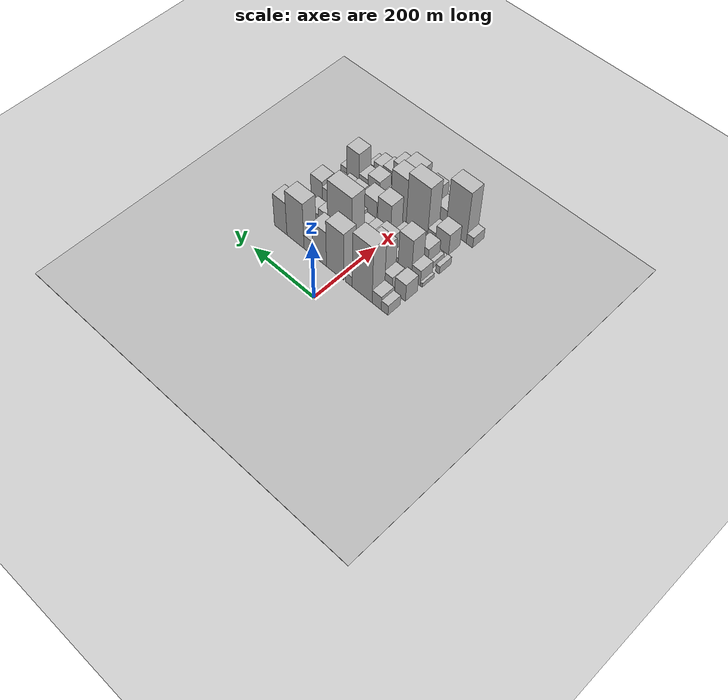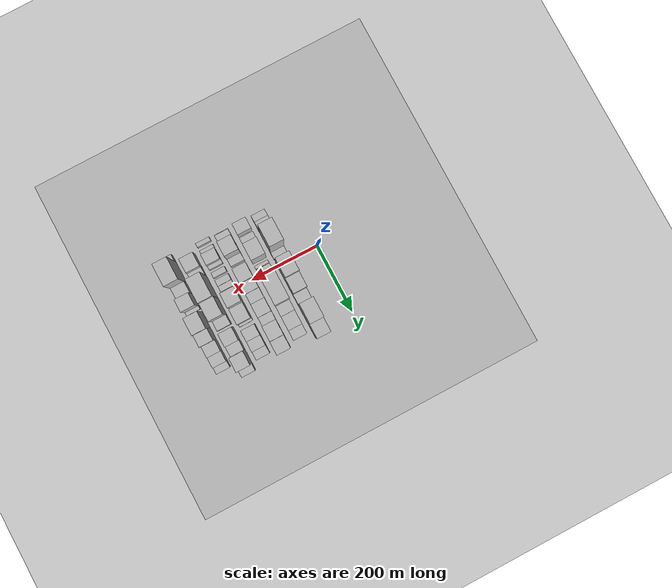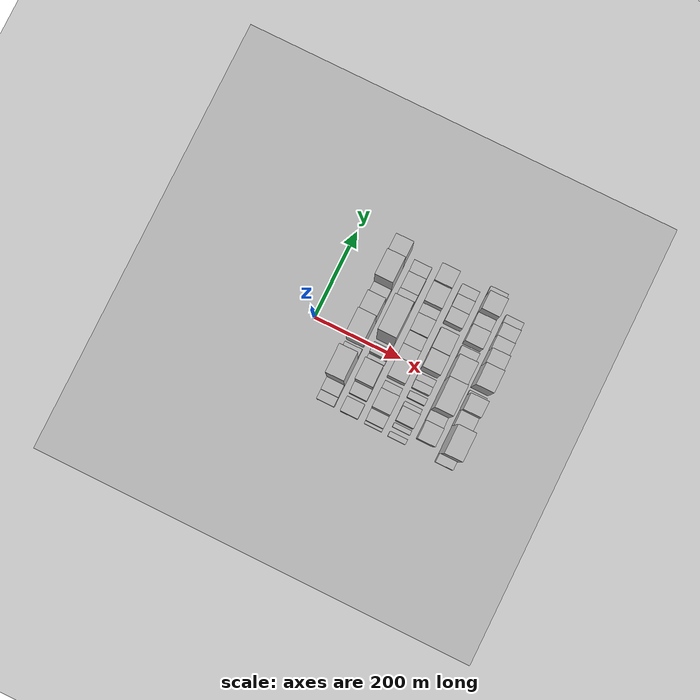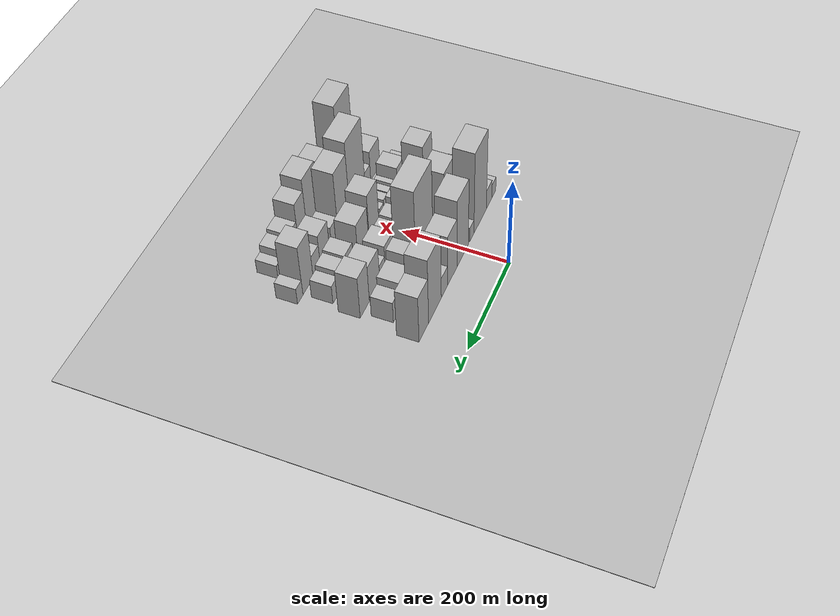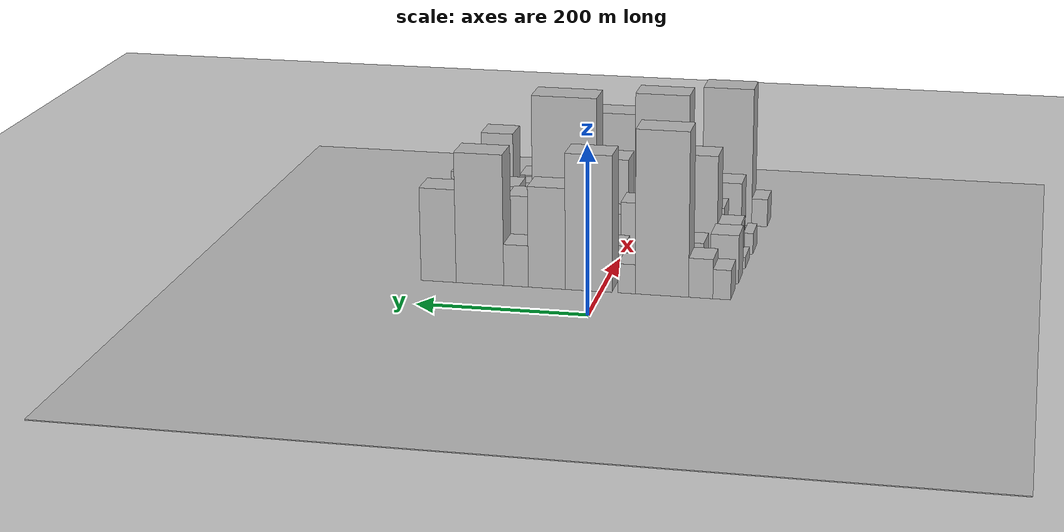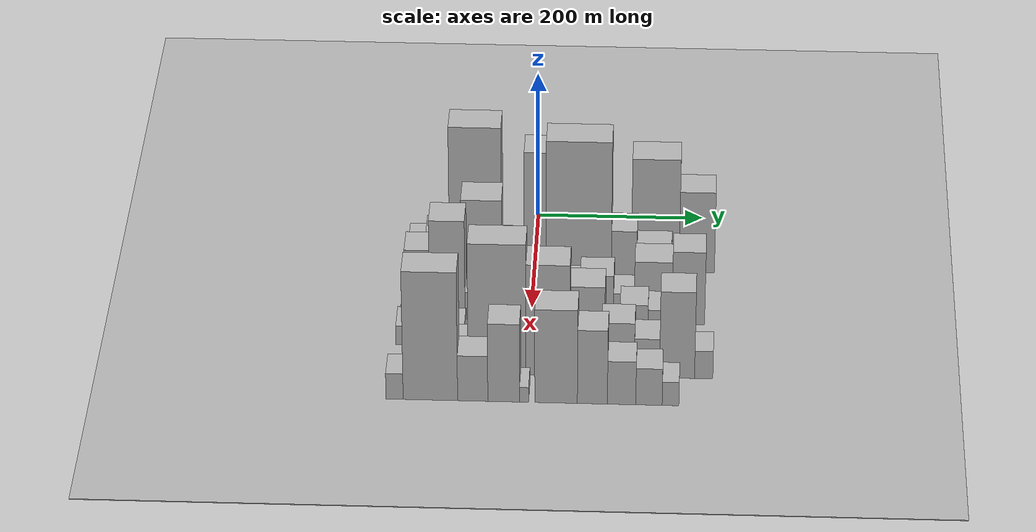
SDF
<sdf version="1.6">
 <world name="default">
  <include><name>ground_plane_1</name><uri>model://HANNAS_ground_plane</uri></include>
  <include>
   <name>ground_plane_2</name>
   <uri>model://HANNAS_ground_plane</uri>
   <pose>100 0 0  0 0 0</pose>
  </include>
  <model name="building_18">
   <static>1</static>
   <pose>100.0000 -140.6961 0 0.000000 0.000000 0.000000</pose>
   <link name="link">
    <pose>0 0 18.00 0 0 0</pose>
    <collision name="collision"><geometry><box><size>40.0000 20.7948 36.0000</size></box></geometry></collision>
    <visual name="visual">
     <cast_shadows>0</cast_shadows>
     <geometry><box><size>40.0000 20.7948 36.0000</size></box></geometry>
     <material>
      <script>
       <uri>model://HANNAS_wall/materials/scripts</uri>
       <uri>model://HANNAS_wall/materials/textures</uri>
       <name>vrc/HANNAS_wall</name>
      </script>
     </material>
    </visual>
   </link>
  </model>
  <model name="building_19">
   <static>1</static>
   <pose>100.0000 -116.2024 0 0.000000 0.000000 0.000000</pose>
   <link name="link">
    <pose>0 0 24.00 0 0 0</pose>
    <collision name="collision"><geometry><box><size>40.0000 28.1926 48.0000</size></box></geometry></collision>
    <visual name="visual">
     <cast_shadows>0</cast_shadows>
     <geometry><box><size>40.0000 28.1926 48.0000</size></box></geometry>
     <material>
      <script>
       <uri>model://HANNAS_wall/materials/scripts</uri>
       <uri>model://HANNAS_wall/materials/textures</uri>
       <name>vrc/HANNAS_wall</name>
      </script>
     </material>
    </visual>
   </link>
  </model>
  <model name="building_20">
   <static>1</static>
   <pose>100.0000 -70.9713 0 0.000000 0.000000 0.000000</pose>
   <link name="link">
    <pose>0 0 99.00 0 0 0</pose>
    <collision name="collision"><geometry><box><size>40.0000 62.2696 198.0000</size></box></geometry></collision>
    <visual name="visual">
     <cast_shadows>0</cast_shadows>
     <geometry><box><size>40.0000 62.2696 198.0000</size></box></geometry>
     <material>
      <script>
       <uri>model://HANNAS_wall/materials/scripts</uri>
       <uri>model://HANNAS_wall/materials/textures</uri>
       <name>vrc/HANNAS_wall</name>
      </script>
     </material>
    </visual>
   </link>
  </model>
  <model name="building_21">
   <static>1</static>
   <pose>100.0000 -29.6913 0 0.000000 0.000000 0.000000</pose>
   <link name="link">
    <pose>0 0 18.00 0 0 0</pose>
    <collision name="collision"><geometry><box><size>40.0000 20.2905 36.0000</size></box></geometry></collision>
    <visual name="visual">
     <cast_shadows>0</cast_shadows>
     <geometry><box><size>40.0000 20.2905 36.0000</size></box></geometry>
     <material>
      <script>
       <uri>model://HANNAS_wall/materials/scripts</uri>
       <uri>model://HANNAS_wall/materials/textures</uri>
       <name>vrc/HANNAS_wall</name>
      </script>
     </material>
    </visual>
   </link>
  </model>
  <model name="building_22">
   <static>1</static>
   <pose>100.0000 15.0031 0 0.000000 0.000000 0.000000</pose>
   <link name="link">
    <pose>0 0 82.50 0 0 0</pose>
    <collision name="collision"><geometry><box><size>40.0000 55.0982 165.0000</size></box></geometry></collision>
    <visual name="visual">
     <cast_shadows>0</cast_shadows>
     <geometry><box><size>40.0000 55.0982 165.0000</size></box></geometry>
     <material>
      <script>
       <uri>model://HANNAS_wall/materials/scripts</uri>
       <uri>model://HANNAS_wall/materials/textures</uri>
       <name>vrc/HANNAS_wall</name>
      </script>
     </material>
    </visual>
   </link>
  </model>
  <model name="building_23">
   <static>1</static>
   <pose>100.0000 64.5372 0 0.000000 0.000000 0.000000</pose>
   <link name="link">
    <pose>0 0 61.50 0 0 0</pose>
    <collision name="collision"><geometry><box><size>40.0000 43.9700 123.0000</size></box></geometry></collision>
    <visual name="visual">
     <cast_shadows>0</cast_shadows>
     <geometry><box><size>40.0000 43.9700 123.0000</size></box></geometry>
     <material>
      <script>
       <uri>model://HANNAS_wall/materials/scripts</uri>
       <uri>model://HANNAS_wall/materials/textures</uri>
       <name>vrc/HANNAS_wall</name>
      </script>
     </material>
    </visual>
   </link>
  </model>
  <model name="building_24">
   <static>1</static>
   <pose>100.0000 101.1904 0 0.000000 0.000000 0.000000</pose>
   <link name="link">
    <pose>0 0 25.50 0 0 0</pose>
    <collision name="collision"><geometry><box><size>40.0000 29.3365 51.0000</size></box></geometry></collision>
    <visual name="visual">
     <cast_shadows>0</cast_shadows>
     <geometry><box><size>40.0000 29.3365 51.0000</size></box></geometry>
     <material>
      <script>
       <uri>model://HANNAS_wall/materials/scripts</uri>
       <uri>model://HANNAS_wall/materials/textures</uri>
       <name>vrc/HANNAS_wall</name>
      </script>
     </material>
    </visual>
   </link>
  </model>
  <model name="building_25">
   <static>1</static>
   <pose>100.0000 144.4242 0 0.000000 0.000000 0.000000</pose>
   <link name="link">
    <pose>0 0 79.50 0 0 0</pose>
    <collision name="collision"><geometry><box><size>40.0000 57.1311 159.0000</size></box></geometry></collision>
    <visual name="visual">
     <cast_shadows>0</cast_shadows>
     <geometry><box><size>40.0000 57.1311 159.0000</size></box></geometry>
     <material>
      <script>
       <uri>model://HANNAS_wall/materials/scripts</uri>
       <uri>model://HANNAS_wall/materials/textures</uri>
       <name>vrc/HANNAS_wall</name>
      </script>
     </material>
    </visual>
   </link>
  </model>
  <model name="building_26">
   <static>1</static>
   <pose>100.0000 194.0996 0 0.000000 0.000000 0.000000</pose>
   <link name="link">
    <pose>0 0 57.00 0 0 0</pose>
    <collision name="collision"><geometry><box><size>40.0000 42.2197 114.0000</size></box></geometry></collision>
    <visual name="visual">
     <cast_shadows>0</cast_shadows>
     <geometry><box><size>40.0000 42.2197 114.0000</size></box></geometry>
     <material>
      <script>
       <uri>model://HANNAS_wall/materials/scripts</uri>
       <uri>model://HANNAS_wall/materials/textures</uri>
       <name>vrc/HANNAS_wall</name>
      </script>
     </material>
    </visual>
   </link>
  </model>
  <model name="building_69">
   <static>1</static>
   <pose>155.0000 -135.9480 0 0.000000 0.000000 0.000000</pose>
   <link name="link">
    <pose>0 0 30.00 0 0 0</pose>
    <collision name="collision"><geometry><box><size>40.0000 33.1781 60.0000</size></box></geometry></collision>
    <visual name="visual">
     <cast_shadows>0</cast_shadows>
     <geometry><box><size>40.0000 33.1781 60.0000</size></box></geometry>
     <material>
      <script>
       <uri>model://HANNAS_wall/materials/scripts</uri>
       <uri>model://HANNAS_wall/materials/textures</uri>
       <name>vrc/HANNAS_wall</name>
      </script>
     </material>
    </visual>
   </link>
  </model>
  <model name="building_70">
   <static>1</static>
   <pose>155.0000 -98.1413 0 0.000000 0.000000 0.000000</pose>
   <link name="link">
    <pose>0 0 24.00 0 0 0</pose>
    <collision name="collision"><geometry><box><size>40.0000 26.4352 48.0000</size></box></geometry></collision>
    <visual name="visual">
     <cast_shadows>0</cast_shadows>
     <geometry><box><size>40.0000 26.4352 48.0000</size></box></geometry>
     <material>
      <script>
       <uri>model://HANNAS_wall/materials/scripts</uri>
       <uri>model://HANNAS_wall/materials/textures</uri>
       <name>vrc/HANNAS_wall</name>
      </script>
     </material>
    </visual>
   </link>
  </model>
  <model name="building_71">
   <static>1</static>
   <pose>155.0000 -60.9231 0 0.000000 0.000000 0.000000</pose>
   <link name="link">
    <pose>0 0 66.00 0 0 0</pose>
    <collision name="collision"><geometry><box><size>40.0000 48.0013 132.0000</size></box></geometry></collision>
    <visual name="visual">
     <cast_shadows>0</cast_shadows>
     <geometry><box><size>40.0000 48.0013 132.0000</size></box></geometry>
     <material>
      <script>
       <uri>model://HANNAS_wall/materials/scripts</uri>
       <uri>model://HANNAS_wall/materials/textures</uri>
       <name>vrc/HANNAS_wall</name>
      </script>
     </material>
    </visual>
   </link>
  </model>
  <model name="building_72">
   <static>1</static>
   <pose>155.0000 -24.2835 0 0.000000 0.000000 0.000000</pose>
   <link name="link">
    <pose>0 0 10.50 0 0 0</pose>
    <collision name="collision"><geometry><box><size>40.0000 9.2779 21.0000</size></box></geometry></collision>
    <visual name="visual">
     <cast_shadows>0</cast_shadows>
     <geometry><box><size>40.0000 9.2779 21.0000</size></box></geometry>
     <material>
      <script>
       <uri>model://HANNAS_wall/materials/scripts</uri>
       <uri>model://HANNAS_wall/materials/textures</uri>
       <name>vrc/HANNAS_wall</name>
      </script>
     </material>
    </visual>
   </link>
  </model>
  <model name="building_73">
   <static>1</static>
   <pose>155.0000 -5.4014 0 0.000000 0.000000 0.000000</pose>
   <link name="link">
    <pose>0 0 19.50 0 0 0</pose>
    <collision name="collision"><geometry><box><size>40.0000 22.4862 39.0000</size></box></geometry></collision>
    <visual name="visual">
     <cast_shadows>0</cast_shadows>
     <geometry><box><size>40.0000 22.4862 39.0000</size></box></geometry>
     <material>
      <script>
       <uri>model://HANNAS_wall/materials/scripts</uri>
       <uri>model://HANNAS_wall/materials/textures</uri>
       <name>vrc/HANNAS_wall</name>
      </script>
     </material>
    </visual>
   </link>
  </model>
  <model name="building_74">
   <static>1</static>
   <pose>155.0000 54.4046 0 0.000000 0.000000 0.000000</pose>
   <link name="link">
    <pose>0 0 108.00 0 0 0</pose>
    <collision name="collision"><geometry><box><size>40.0000 77.1258 216.0000</size></box></geometry></collision>
    <visual name="visual">
     <cast_shadows>0</cast_shadows>
     <geometry><box><size>40.0000 77.1258 216.0000</size></box></geometry>
     <material>
      <script>
       <uri>model://HANNAS_wall/materials/scripts</uri>
       <uri>model://HANNAS_wall/materials/textures</uri>
       <name>vrc/HANNAS_wall</name>
      </script>
     </material>
    </visual>
   </link>
  </model>
  <model name="building_75">
   <static>1</static>
   <pose>155.0000 108.0499 0 0.000000 0.000000 0.000000</pose>
   <link name="link">
    <pose>0 0 46.50 0 0 0</pose>
    <collision name="collision"><geometry><box><size>40.0000 30.1649 93.0000</size></box></geometry></collision>
    <visual name="visual">
     <cast_shadows>0</cast_shadows>
     <geometry><box><size>40.0000 30.1649 93.0000</size></box></geometry>
     <material>
      <script>
       <uri>model://HANNAS_wall/materials/scripts</uri>
       <uri>model://HANNAS_wall/materials/textures</uri>
       <name>vrc/HANNAS_wall</name>
      </script>
     </material>
    </visual>
   </link>
  </model>
  <model name="building_76">
   <static>1</static>
   <pose>155.0000 143.5891 0 0.000000 0.000000 0.000000</pose>
   <link name="link">
    <pose>0 0 34.50 0 0 0</pose>
    <collision name="collision"><geometry><box><size>40.0000 40.9134 69.0000</size></box></geometry></collision>
    <visual name="visual">
     <cast_shadows>0</cast_shadows>
     <geometry><box><size>40.0000 40.9134 69.0000</size></box></geometry>
     <material>
      <script>
       <uri>model://HANNAS_wall/materials/scripts</uri>
       <uri>model://HANNAS_wall/materials/textures</uri>
       <name>vrc/HANNAS_wall</name>
      </script>
     </material>
    </visual>
   </link>
  </model>
  <model name="building_77">
   <static>1</static>
   <pose>155.0000 178.4997 0 0.000000 0.000000 0.000000</pose>
   <link name="link">
    <pose>0 0 25.50 0 0 0</pose>
    <collision name="collision"><geometry><box><size>40.0000 28.9078 51.0000</size></box></geometry></collision>
    <visual name="visual">
     <cast_shadows>0</cast_shadows>
     <geometry><box><size>40.0000 28.9078 51.0000</size></box></geometry>
     <material>
      <script>
       <uri>model://HANNAS_wall/materials/scripts</uri>
       <uri>model://HANNAS_wall/materials/textures</uri>
       <name>vrc/HANNAS_wall</name>
      </script>
     </material>
    </visual>
   </link>
  </model>
  <model name="building_122">
   <static>1</static>
   <pose>210.0000 -150.2718 0 0.000000 0.000000 0.000000</pose>
   <link name="link">
    <pose>0 0 7.50 0 0 0</pose>
    <collision name="collision"><geometry><box><size>40.0000 6.5407 15.0000</size></box></geometry></collision>
    <visual name="visual">
     <cast_shadows>0</cast_shadows>
     <geometry><box><size>40.0000 6.5407 15.0000</size></box></geometry>
     <material>
      <script>
       <uri>model://HANNAS_wall/materials/scripts</uri>
       <uri>model://HANNAS_wall/materials/textures</uri>
       <name>vrc/HANNAS_wall</name>
      </script>
     </material>
    </visual>
   </link>
  </model>
  <model name="building_123">
   <static>1</static>
   <pose>210.0000 -133.2126 0 0.000000 0.000000 0.000000</pose>
   <link name="link">
    <pose>0 0 27.00 0 0 0</pose>
    <collision name="collision"><geometry><box><size>40.0000 27.5777 54.0000</size></box></geometry></collision>
    <visual name="visual">
     <cast_shadows>0</cast_shadows>
     <geometry><box><size>40.0000 27.5777 54.0000</size></box></geometry>
     <material>
      <script>
       <uri>model://HANNAS_wall/materials/scripts</uri>
       <uri>model://HANNAS_wall/materials/textures</uri>
       <name>vrc/HANNAS_wall</name>
      </script>
     </material>
    </visual>
   </link>
  </model>
  <model name="building_124">
   <static>1</static>
   <pose>210.0000 -98.5318 0 0.000000 0.000000 0.000000</pose>
   <link name="link">
    <pose>0 0 69.00 0 0 0</pose>
    <collision name="collision"><geometry><box><size>40.0000 41.7841 138.0000</size></box></geometry></collision>
    <visual name="visual">
     <cast_shadows>0</cast_shadows>
     <geometry><box><size>40.0000 41.7841 138.0000</size></box></geometry>
     <material>
      <script>
       <uri>model://HANNAS_wall/materials/scripts</uri>
       <uri>model://HANNAS_wall/materials/textures</uri>
       <name>vrc/HANNAS_wall</name>
      </script>
     </material>
    </visual>
   </link>
  </model>
  <model name="building_125">
   <static>1</static>
   <pose>210.0000 -66.5874 0 0.000000 0.000000 0.000000</pose>
   <link name="link">
    <pose>0 0 19.50 0 0 0</pose>
    <collision name="collision"><geometry><box><size>40.0000 22.1046 39.0000</size></box></geometry></collision>
    <visual name="visual">
     <cast_shadows>0</cast_shadows>
     <geometry><box><size>40.0000 22.1046 39.0000</size></box></geometry>
     <material>
      <script>
       <uri>model://HANNAS_wall/materials/scripts</uri>
       <uri>model://HANNAS_wall/materials/textures</uri>
       <name>vrc/HANNAS_wall</name>
      </script>
     </material>
    </visual>
   </link>
  </model>
  <model name="building_126">
   <static>1</static>
   <pose>210.0000 -24.7874 0 0.000000 0.000000 0.000000</pose>
   <link name="link">
    <pose>0 0 37.50 0 0 0</pose>
    <collision name="collision"><geometry><box><size>40.0000 43.4955 75.0000</size></box></geometry></collision>
    <visual name="visual">
     <cast_shadows>0</cast_shadows>
     <geometry><box><size>40.0000 43.4955 75.0000</size></box></geometry>
     <material>
      <script>
       <uri>model://HANNAS_wall/materials/scripts</uri>
       <uri>model://HANNAS_wall/materials/textures</uri>
       <name>vrc/HANNAS_wall</name>
      </script>
     </material>
    </visual>
   </link>
  </model>
  <model name="building_127">
   <static>1</static>
   <pose>210.0000 12.3852 0 0.000000 0.000000 0.000000</pose>
   <link name="link">
    <pose>0 0 30.00 0 0 0</pose>
    <collision name="collision"><geometry><box><size>40.0000 30.8497 60.0000</size></box></geometry></collision>
    <visual name="visual">
     <cast_shadows>0</cast_shadows>
     <geometry><box><size>40.0000 30.8497 60.0000</size></box></geometry>
     <material>
      <script>
       <uri>model://HANNAS_wall/materials/scripts</uri>
       <uri>model://HANNAS_wall/materials/textures</uri>
       <name>vrc/HANNAS_wall</name>
      </script>
     </material>
    </visual>
   </link>
  </model>
  <model name="building_128">
   <static>1</static>
   <pose>210.0000 42.7533 0 0.000000 0.000000 0.000000</pose>
   <link name="link">
    <pose>0 0 27.00 0 0 0</pose>
    <collision name="collision"><geometry><box><size>40.0000 29.8865 54.0000</size></box></geometry></collision>
    <visual name="visual">
     <cast_shadows>0</cast_shadows>
     <geometry><box><size>40.0000 29.8865 54.0000</size></box></geometry>
     <material>
      <script>
       <uri>model://HANNAS_wall/materials/scripts</uri>
       <uri>model://HANNAS_wall/materials/textures</uri>
       <name>vrc/HANNAS_wall</name>
      </script>
     </material>
    </visual>
   </link>
  </model>
  <model name="building_129">
   <static>1</static>
   <pose>210.0000 77.4298 0 0.000000 0.000000 0.000000</pose>
   <link name="link">
    <pose>0 0 33.00 0 0 0</pose>
    <collision name="collision"><geometry><box><size>40.0000 39.4665 66.0000</size></box></geometry></collision>
    <visual name="visual">
     <cast_shadows>0</cast_shadows>
     <geometry><box><size>40.0000 39.4665 66.0000</size></box></geometry>
     <material>
      <script>
       <uri>model://HANNAS_wall/materials/scripts</uri>
       <uri>model://HANNAS_wall/materials/textures</uri>
       <name>vrc/HANNAS_wall</name>
      </script>
     </material>
    </visual>
   </link>
  </model>
  <model name="building_130">
   <static>1</static>
   <pose>210.0000 109.3993 0 0.000000 0.000000 0.000000</pose>
   <link name="link">
    <pose>0 0 21.00 0 0 0</pose>
    <collision name="collision"><geometry><box><size>40.0000 24.4725 42.0000</size></box></geometry></collision>
    <visual name="visual">
     <cast_shadows>0</cast_shadows>
     <geometry><box><size>40.0000 24.4725 42.0000</size></box></geometry>
     <material>
      <script>
       <uri>model://HANNAS_wall/materials/scripts</uri>
       <uri>model://HANNAS_wall/materials/textures</uri>
       <name>vrc/HANNAS_wall</name>
      </script>
     </material>
    </visual>
   </link>
  </model>
  <model name="building_131">
   <static>1</static>
   <pose>210.0000 143.8722 0 0.000000 0.000000 0.000000</pose>
   <link name="link">
    <pose>0 0 43.50 0 0 0</pose>
    <collision name="collision"><geometry><box><size>40.0000 44.4734 87.0000</size></box></geometry></collision>
    <visual name="visual">
     <cast_shadows>0</cast_shadows>
     <geometry><box><size>40.0000 44.4734 87.0000</size></box></geometry>
     <material>
      <script>
       <uri>model://HANNAS_wall/materials/scripts</uri>
       <uri>model://HANNAS_wall/materials/textures</uri>
       <name>vrc/HANNAS_wall</name>
      </script>
     </material>
    </visual>
   </link>
  </model>
  <model name="building_132">
   <static>1</static>
   <pose>210.0000 185.2780 0 0.000000 0.000000 0.000000</pose>
   <link name="link">
    <pose>0 0 51.00 0 0 0</pose>
    <collision name="collision"><geometry><box><size>40.0000 38.3381 102.0000</size></box></geometry></collision>
    <visual name="visual">
     <cast_shadows>0</cast_shadows>
     <geometry><box><size>40.0000 38.3381 102.0000</size></box></geometry>
     <material>
      <script>
       <uri>model://HANNAS_wall/materials/scripts</uri>
       <uri>model://HANNAS_wall/materials/textures</uri>
       <name>vrc/HANNAS_wall</name>
      </script>
     </material>
    </visual>
   </link>
  </model>
  <model name="building_172">
   <static>1</static>
   <pose>265.0000 -149.8676 0 0.000000 0.000000 0.000000</pose>
   <link name="link">
    <pose>0 0 13.50 0 0 0</pose>
    <collision name="collision"><geometry><box><size>40.0000 11.6395 27.0000</size></box></geometry></collision>
    <visual name="visual">
     <cast_shadows>0</cast_shadows>
     <geometry><box><size>40.0000 11.6395 27.0000</size></box></geometry>
     <material>
      <script>
       <uri>model://HANNAS_wall/materials/scripts</uri>
       <uri>model://HANNAS_wall/materials/textures</uri>
       <name>vrc/HANNAS_wall</name>
      </script>
     </material>
    </visual>
   </link>
  </model>
  <model name="building_173">
   <static>1</static>
   <pose>265.0000 -128.9775 0 0.000000 0.000000 0.000000</pose>
   <link name="link">
    <pose>0 0 10.50 0 0 0</pose>
    <collision name="collision"><geometry><box><size>40.0000 10.1407 21.0000</size></box></geometry></collision>
    <visual name="visual">
     <cast_shadows>0</cast_shadows>
     <geometry><box><size>40.0000 10.1407 21.0000</size></box></geometry>
     <material>
      <script>
       <uri>model://HANNAS_wall/materials/scripts</uri>
       <uri>model://HANNAS_wall/materials/textures</uri>
       <name>vrc/HANNAS_wall</name>
      </script>
     </material>
    </visual>
   </link>
  </model>
  <model name="building_174">
   <static>1</static>
   <pose>265.0000 -103.5524 0 0.000000 0.000000 0.000000</pose>
   <link name="link">
    <pose>0 0 28.50 0 0 0</pose>
    <collision name="collision"><geometry><box><size>40.0000 32.7095 57.0000</size></box></geometry></collision>
    <visual name="visual">
     <cast_shadows>0</cast_shadows>
     <geometry><box><size>40.0000 32.7095 57.0000</size></box></geometry>
     <material>
      <script>
       <uri>model://HANNAS_wall/materials/scripts</uri>
       <uri>model://HANNAS_wall/materials/textures</uri>
       <name>vrc/HANNAS_wall</name>
      </script>
     </material>
    </visual>
   </link>
  </model>
  <model name="building_175">
   <static>1</static>
   <pose>265.0000 -81.3703 0 0.000000 0.000000 0.000000</pose>
   <link name="link">
    <pose>0 0 13.50 0 0 0</pose>
    <collision name="collision"><geometry><box><size>40.0000 11.6546 27.0000</size></box></geometry></collision>
    <visual name="visual">
     <cast_shadows>0</cast_shadows>
     <geometry><box><size>40.0000 11.6546 27.0000</size></box></geometry>
     <material>
      <script>
       <uri>model://HANNAS_wall/materials/scripts</uri>
       <uri>model://HANNAS_wall/materials/textures</uri>
       <name>vrc/HANNAS_wall</name>
      </script>
     </material>
    </visual>
   </link>
  </model>
  <model name="building_176">
   <static>1</static>
   <pose>265.0000 -58.9010 0 0.000000 0.000000 0.000000</pose>
   <link name="link">
    <pose>0 0 15.00 0 0 0</pose>
    <collision name="collision"><geometry><box><size>40.0000 15.2840 30.0000</size></box></geometry></collision>
    <visual name="visual">
     <cast_shadows>0</cast_shadows>
     <geometry><box><size>40.0000 15.2840 30.0000</size></box></geometry>
     <material>
      <script>
       <uri>model://HANNAS_wall/materials/scripts</uri>
       <uri>model://HANNAS_wall/materials/textures</uri>
       <name>vrc/HANNAS_wall</name>
      </script>
     </material>
    </visual>
   </link>
  </model>
  <model name="building_177">
   <static>1</static>
   <pose>265.0000 -35.1068 0 0.000000 0.000000 0.000000</pose>
   <link name="link">
    <pose>0 0 18.00 0 0 0</pose>
    <collision name="collision"><geometry><box><size>40.0000 18.3045 36.0000</size></box></geometry></collision>
    <visual name="visual">
     <cast_shadows>0</cast_shadows>
     <geometry><box><size>40.0000 18.3045 36.0000</size></box></geometry>
     <material>
      <script>
       <uri>model://HANNAS_wall/materials/scripts</uri>
       <uri>model://HANNAS_wall/materials/textures</uri>
       <name>vrc/HANNAS_wall</name>
      </script>
     </material>
    </visual>
   </link>
  </model>
  <model name="building_178">
   <static>1</static>
   <pose>265.0000 -17.7194 0 0.000000 0.000000 0.000000</pose>
   <link name="link">
    <pose>0 0 15.00 0 0 0</pose>
    <collision name="collision"><geometry><box><size>40.0000 16.4702 30.0000</size></box></geometry></collision>
    <visual name="visual">
     <cast_shadows>0</cast_shadows>
     <geometry><box><size>40.0000 16.4702 30.0000</size></box></geometry>
     <material>
      <script>
       <uri>model://HANNAS_wall/materials/scripts</uri>
       <uri>model://HANNAS_wall/materials/textures</uri>
       <name>vrc/HANNAS_wall</name>
      </script>
     </material>
    </visual>
   </link>
  </model>
  <model name="building_179">
   <static>1</static>
   <pose>265.0000 18.6278 0 0.000000 0.000000 0.000000</pose>
   <link name="link">
    <pose>0 0 55.50 0 0 0</pose>
    <collision name="collision"><geometry><box><size>40.0000 42.2244 111.0000</size></box></geometry></collision>
    <visual name="visual">
     <cast_shadows>0</cast_shadows>
     <geometry><box><size>40.0000 42.2244 111.0000</size></box></geometry>
     <material>
      <script>
       <uri>model://HANNAS_wall/materials/scripts</uri>
       <uri>model://HANNAS_wall/materials/textures</uri>
       <name>vrc/HANNAS_wall</name>
      </script>
     </material>
    </visual>
   </link>
  </model>
  <model name="building_180">
   <static>1</static>
   <pose>265.0000 65.5832 0 0.000000 0.000000 0.000000</pose>
   <link name="link">
    <pose>0 0 43.50 0 0 0</pose>
    <collision name="collision"><geometry><box><size>40.0000 45.6862 87.0000</size></box></geometry></collision>
    <visual name="visual">
     <cast_shadows>0</cast_shadows>
     <geometry><box><size>40.0000 45.6862 87.0000</size></box></geometry>
     <material>
      <script>
       <uri>model://HANNAS_wall/materials/scripts</uri>
       <uri>model://HANNAS_wall/materials/textures</uri>
       <name>vrc/HANNAS_wall</name>
      </script>
     </material>
    </visual>
   </link>
  </model>
  <model name="building_181">
   <static>1</static>
   <pose>265.0000 92.1627 0 0.000000 0.000000 0.000000</pose>
   <link name="link">
    <pose>0 0 7.50 0 0 0</pose>
    <collision name="collision"><geometry><box><size>40.0000 7.4728 15.0000</size></box></geometry></collision>
    <visual name="visual">
     <cast_shadows>0</cast_shadows>
     <geometry><box><size>40.0000 7.4728 15.0000</size></box></geometry>
     <material>
      <script>
       <uri>model://HANNAS_wall/materials/scripts</uri>
       <uri>model://HANNAS_wall/materials/textures</uri>
       <name>vrc/HANNAS_wall</name>
      </script>
     </material>
    </visual>
   </link>
  </model>
  <model name="building_182">
   <static>1</static>
   <pose>265.0000 122.1841 0 0.000000 0.000000 0.000000</pose>
   <link name="link">
    <pose>0 0 31.50 0 0 0</pose>
    <collision name="collision"><geometry><box><size>40.0000 32.5700 63.0000</size></box></geometry></collision>
    <visual name="visual">
     <cast_shadows>0</cast_shadows>
     <geometry><box><size>40.0000 32.5700 63.0000</size></box></geometry>
     <material>
      <script>
       <uri>model://HANNAS_wall/materials/scripts</uri>
       <uri>model://HANNAS_wall/materials/textures</uri>
       <name>vrc/HANNAS_wall</name>
      </script>
     </material>
    </visual>
   </link>
  </model>
  <model name="building_183">
   <static>1</static>
   <pose>265.0000 153.4349 0 0.000000 0.000000 0.000000</pose>
   <link name="link">
    <pose>0 0 28.50 0 0 0</pose>
    <collision name="collision"><geometry><box><size>40.0000 29.9317 57.0000</size></box></geometry></collision>
    <visual name="visual">
     <cast_shadows>0</cast_shadows>
     <geometry><box><size>40.0000 29.9317 57.0000</size></box></geometry>
     <material>
      <script>
       <uri>model://HANNAS_wall/materials/scripts</uri>
       <uri>model://HANNAS_wall/materials/textures</uri>
       <name>vrc/HANNAS_wall</name>
      </script>
     </material>
    </visual>
   </link>
  </model>
  <model name="building_184">
   <static>1</static>
   <pose>265.0000 180.4928 0 0.000000 0.000000 0.000000</pose>
   <link name="link">
    <pose>0 0 22.50 0 0 0</pose>
    <collision name="collision"><geometry><box><size>40.0000 24.1840 45.0000</size></box></geometry></collision>
    <visual name="visual">
     <cast_shadows>0</cast_shadows>
     <geometry><box><size>40.0000 24.1840 45.0000</size></box></geometry>
     <material>
      <script>
       <uri>model://HANNAS_wall/materials/scripts</uri>
       <uri>model://HANNAS_wall/materials/textures</uri>
       <name>vrc/HANNAS_wall</name>
      </script>
     </material>
    </visual>
   </link>
  </model>
  <model name="building_227">
   <static>1</static>
   <pose>320.0000 -113.5482 0 0.000000 0.000000 0.000000</pose>
   <link name="link">
    <pose>0 0 36.00 0 0 0</pose>
    <collision name="collision"><geometry><box><size>40.0000 41.2360 72.0000</size></box></geometry></collision>
    <visual name="visual">
     <cast_shadows>0</cast_shadows>
     <geometry><box><size>40.0000 41.2360 72.0000</size></box></geometry>
     <material>
      <script>
       <uri>model://HANNAS_wall/materials/scripts</uri>
       <uri>model://HANNAS_wall/materials/textures</uri>
       <name>vrc/HANNAS_wall</name>
      </script>
     </material>
    </visual>
   </link>
  </model>
  <model name="building_228">
   <static>1</static>
   <pose>320.0000 -80.6344 0 0.000000 0.000000 0.000000</pose>
   <link name="link">
    <pose>0 0 21.00 0 0 0</pose>
    <collision name="collision"><geometry><box><size>40.0000 24.5917 42.0000</size></box></geometry></collision>
    <visual name="visual">
     <cast_shadows>0</cast_shadows>
     <geometry><box><size>40.0000 24.5917 42.0000</size></box></geometry>
     <material>
      <script>
       <uri>model://HANNAS_wall/materials/scripts</uri>
       <uri>model://HANNAS_wall/materials/textures</uri>
       <name>vrc/HANNAS_wall</name>
      </script>
     </material>
    </visual>
   </link>
  </model>
  <model name="building_229">
   <static>1</static>
   <pose>320.0000 -34.8282 0 0.000000 0.000000 0.000000</pose>
   <link name="link">
    <pose>0 0 90.00 0 0 0</pose>
    <collision name="collision"><geometry><box><size>40.0000 67.0207 180.0000</size></box></geometry></collision>
    <visual name="visual">
     <cast_shadows>0</cast_shadows>
     <geometry><box><size>40.0000 67.0207 180.0000</size></box></geometry>
     <material>
      <script>
       <uri>model://HANNAS_wall/materials/scripts</uri>
       <uri>model://HANNAS_wall/materials/textures</uri>
       <name>vrc/HANNAS_wall</name>
      </script>
     </material>
    </visual>
   </link>
  </model>
  <model name="building_230">
   <static>1</static>
   <pose>320.0000 23.9792 0 0.000000 0.000000 0.000000</pose>
   <link name="link">
    <pose>0 0 76.50 0 0 0</pose>
    <collision name="collision"><geometry><box><size>40.0000 50.5940 153.0000</size></box></geometry></collision>
    <visual name="visual">
     <cast_shadows>0</cast_shadows>
     <geometry><box><size>40.0000 50.5940 153.0000</size></box></geometry>
     <material>
      <script>
       <uri>model://HANNAS_wall/materials/scripts</uri>
       <uri>model://HANNAS_wall/materials/textures</uri>
       <name>vrc/HANNAS_wall</name>
      </script>
     </material>
    </visual>
   </link>
  </model>
  <model name="building_231">
   <static>1</static>
   <pose>320.0000 63.5781 0 0.000000 0.000000 0.000000</pose>
   <link name="link">
    <pose>0 0 24.00 0 0 0</pose>
    <collision name="collision"><geometry><box><size>40.0000 28.6039 48.0000</size></box></geometry></collision>
    <visual name="visual">
     <cast_shadows>0</cast_shadows>
     <geometry><box><size>40.0000 28.6039 48.0000</size></box></geometry>
     <material>
      <script>
       <uri>model://HANNAS_wall/materials/scripts</uri>
       <uri>model://HANNAS_wall/materials/textures</uri>
       <name>vrc/HANNAS_wall</name>
      </script>
     </material>
    </visual>
   </link>
  </model>
  <model name="building_232">
   <static>1</static>
   <pose>320.0000 105.0578 0 0.000000 0.000000 0.000000</pose>
   <link name="link">
    <pose>0 0 37.50 0 0 0</pose>
    <collision name="collision"><geometry><box><size>40.0000 38.3554 75.0000</size></box></geometry></collision>
    <visual name="visual">
     <cast_shadows>0</cast_shadows>
     <geometry><box><size>40.0000 38.3554 75.0000</size></box></geometry>
     <material>
      <script>
       <uri>model://HANNAS_wall/materials/scripts</uri>
       <uri>model://HANNAS_wall/materials/textures</uri>
       <name>vrc/HANNAS_wall</name>
      </script>
     </material>
    </visual>
   </link>
  </model>
  <model name="building_233">
   <static>1</static>
   <pose>320.0000 138.7681 0 0.000000 0.000000 0.000000</pose>
   <link name="link">
    <pose>0 0 27.00 0 0 0</pose>
    <collision name="collision"><geometry><box><size>40.0000 29.0652 54.0000</size></box></geometry></collision>
    <visual name="visual">
     <cast_shadows>0</cast_shadows>
     <geometry><box><size>40.0000 29.0652 54.0000</size></box></geometry>
     <material>
      <script>
       <uri>model://HANNAS_wall/materials/scripts</uri>
       <uri>model://HANNAS_wall/materials/textures</uri>
       <name>vrc/HANNAS_wall</name>
      </script>
     </material>
    </visual>
   </link>
  </model>
  <model name="building_234">
   <static>1</static>
   <pose>320.0000 173.5642 0 0.000000 0.000000 0.000000</pose>
   <link name="link">
    <pose>0 0 60.00 0 0 0</pose>
    <collision name="collision"><geometry><box><size>40.0000 40.5270 120.0000</size></box></geometry></collision>
    <visual name="visual">
     <cast_shadows>0</cast_shadows>
     <geometry><box><size>40.0000 40.5270 120.0000</size></box></geometry>
     <material>
      <script>
       <uri>model://HANNAS_wall/materials/scripts</uri>
       <uri>model://HANNAS_wall/materials/textures</uri>
       <name>vrc/HANNAS_wall</name>
      </script>
     </material>
    </visual>
   </link>
  </model>
  <model name="building_235">
   <static>1</static>
   <pose>320.0000 204.4089 0 0.000000 0.000000 0.000000</pose>
   <link name="link">
    <pose>0 0 19.50 0 0 0</pose>
    <collision name="collision"><geometry><box><size>40.0000 21.1623 39.0000</size></box></geometry></collision>
    <visual name="visual">
     <cast_shadows>0</cast_shadows>
     <geometry><box><size>40.0000 21.1623 39.0000</size></box></geometry>
     <material>
      <script>
       <uri>model://HANNAS_wall/materials/scripts</uri>
       <uri>model://HANNAS_wall/materials/textures</uri>
       <name>vrc/HANNAS_wall</name>
      </script>
     </material>
    </visual>
   </link>
  </model>
  <model name="building_277">
   <static>1</static>
   <pose>375.0000 -149.9926 0 0.000000 0.000000 0.000000</pose>
   <link name="link">
    <pose>0 0 18.00 0 0 0</pose>
    <collision name="collision"><geometry><box><size>40.0000 19.7464 36.0000</size></box></geometry></collision>
    <visual name="visual">
     <cast_shadows>0</cast_shadows>
     <geometry><box><size>40.0000 19.7464 36.0000</size></box></geometry>
     <material>
      <script>
       <uri>model://HANNAS_wall/materials/scripts</uri>
       <uri>model://HANNAS_wall/materials/textures</uri>
       <name>vrc/HANNAS_wall</name>
      </script>
     </material>
    </visual>
   </link>
  </model>
  <model name="building_278">
   <static>1</static>
   <pose>375.0000 -108.8198 0 0.000000 0.000000 0.000000</pose>
   <link name="link">
    <pose>0 0 88.50 0 0 0</pose>
    <collision name="collision"><geometry><box><size>40.0000 62.5992 177.0000</size></box></geometry></collision>
    <visual name="visual">
     <cast_shadows>0</cast_shadows>
     <geometry><box><size>40.0000 62.5992 177.0000</size></box></geometry>
     <material>
      <script>
       <uri>model://HANNAS_wall/materials/scripts</uri>
       <uri>model://HANNAS_wall/materials/textures</uri>
       <name>vrc/HANNAS_wall</name>
      </script>
     </material>
    </visual>
   </link>
  </model>
  <model name="building_279">
   <static>1</static>
   <pose>375.0000 -60.1615 0 0.000000 0.000000 0.000000</pose>
   <link name="link">
    <pose>0 0 31.50 0 0 0</pose>
    <collision name="collision"><geometry><box><size>40.0000 34.7174 63.0000</size></box></geometry></collision>
    <visual name="visual">
     <cast_shadows>0</cast_shadows>
     <geometry><box><size>40.0000 34.7174 63.0000</size></box></geometry>
     <material>
      <script>
       <uri>model://HANNAS_wall/materials/scripts</uri>
       <uri>model://HANNAS_wall/materials/textures</uri>
       <name>vrc/HANNAS_wall</name>
      </script>
     </material>
    </visual>
   </link>
  </model>
  <model name="building_280">
   <static>1</static>
   <pose>375.0000 -24.5863 0 0.000000 0.000000 0.000000</pose>
   <link name="link">
    <pose>0 0 54.00 0 0 0</pose>
    <collision name="collision"><geometry><box><size>40.0000 36.4331 108.0000</size></box></geometry></collision>
    <visual name="visual">
     <cast_shadows>0</cast_shadows>
     <geometry><box><size>40.0000 36.4331 108.0000</size></box></geometry>
     <material>
      <script>
       <uri>model://HANNAS_wall/materials/scripts</uri>
       <uri>model://HANNAS_wall/materials/textures</uri>
       <name>vrc/HANNAS_wall</name>
      </script>
     </material>
    </visual>
   </link>
  </model>
  <model name="building_281">
   <static>1</static>
   <pose>375.0000 -1.1426 0 0.000000 0.000000 0.000000</pose>
   <link name="link">
    <pose>0 0 10.50 0 0 0</pose>
    <collision name="collision"><geometry><box><size>40.0000 10.4542 21.0000</size></box></geometry></collision>
    <visual name="visual">
     <cast_shadows>0</cast_shadows>
     <geometry><box><size>40.0000 10.4542 21.0000</size></box></geometry>
     <material>
      <script>
       <uri>model://HANNAS_wall/materials/scripts</uri>
       <uri>model://HANNAS_wall/materials/textures</uri>
       <name>vrc/HANNAS_wall</name>
      </script>
     </material>
    </visual>
   </link>
  </model>
  <model name="building_282">
   <static>1</static>
   <pose>375.0000 35.5664 0 0.000000 0.000000 0.000000</pose>
   <link name="link">
    <pose>0 0 64.50 0 0 0</pose>
    <collision name="collision"><geometry><box><size>40.0000 48.9638 129.0000</size></box></geometry></collision>
    <visual name="visual">
     <cast_shadows>0</cast_shadows>
     <geometry><box><size>40.0000 48.9638 129.0000</size></box></geometry>
     <material>
      <script>
       <uri>model://HANNAS_wall/materials/scripts</uri>
       <uri>model://HANNAS_wall/materials/textures</uri>
       <name>vrc/HANNAS_wall</name>
      </script>
     </material>
    </visual>
   </link>
  </model>
  <model name="building_283">
   <static>1</static>
   <pose>375.0000 77.2896 0 0.000000 0.000000 0.000000</pose>
   <link name="link">
    <pose>0 0 51.00 0 0 0</pose>
    <collision name="collision"><geometry><box><size>40.0000 34.4825 102.0000</size></box></geometry></collision>
    <visual name="visual">
     <cast_shadows>0</cast_shadows>
     <geometry><box><size>40.0000 34.4825 102.0000</size></box></geometry>
     <material>
      <script>
       <uri>model://HANNAS_wall/materials/scripts</uri>
       <uri>model://HANNAS_wall/materials/textures</uri>
       <name>vrc/HANNAS_wall</name>
      </script>
     </material>
    </visual>
   </link>
  </model>
  <model name="building_284">
   <static>1</static>
   <pose>375.0000 110.8219 0 0.000000 0.000000 0.000000</pose>
   <link name="link">
    <pose>0 0 30.00 0 0 0</pose>
    <collision name="collision"><geometry><box><size>40.0000 32.5821 60.0000</size></box></geometry></collision>
    <visual name="visual">
     <cast_shadows>0</cast_shadows>
     <geometry><box><size>40.0000 32.5821 60.0000</size></box></geometry>
     <material>
      <script>
       <uri>model://HANNAS_wall/materials/scripts</uri>
       <uri>model://HANNAS_wall/materials/textures</uri>
       <name>vrc/HANNAS_wall</name>
      </script>
     </material>
    </visual>
   </link>
  </model>
  <model name="building_285">
   <static>1</static>
   <pose>375.0000 142.2285 0 0.000000 0.000000 0.000000</pose>
   <link name="link">
    <pose>0 0 25.50 0 0 0</pose>
    <collision name="collision"><geometry><box><size>40.0000 30.2310 51.0000</size></box></geometry></collision>
    <visual name="visual">
     <cast_shadows>0</cast_shadows>
     <geometry><box><size>40.0000 30.2310 51.0000</size></box></geometry>
     <material>
      <script>
       <uri>model://HANNAS_wall/materials/scripts</uri>
       <uri>model://HANNAS_wall/materials/textures</uri>
       <name>vrc/HANNAS_wall</name>
      </script>
     </material>
    </visual>
   </link>
  </model>
  <model name="building_286">
   <static>1</static>
   <pose>375.0000 166.9205 0 0.000000 0.000000 0.000000</pose>
   <link name="link">
    <pose>0 0 16.50 0 0 0</pose>
    <collision name="collision"><geometry><box><size>40.0000 19.1531 33.0000</size></box></geometry></collision>
    <visual name="visual">
     <cast_shadows>0</cast_shadows>
     <geometry><box><size>40.0000 19.1531 33.0000</size></box></geometry>
     <material>
      <script>
       <uri>model://HANNAS_wall/materials/scripts</uri>
       <uri>model://HANNAS_wall/materials/textures</uri>
       <name>vrc/HANNAS_wall</name>
      </script>
     </material>
    </visual>
   </link>
  </model>
 </world>
</sdf>
